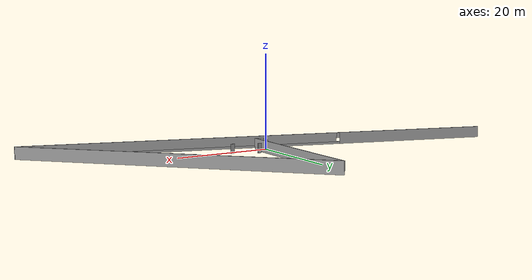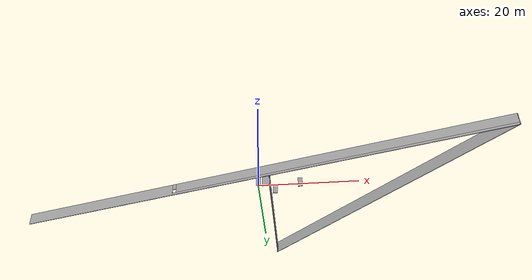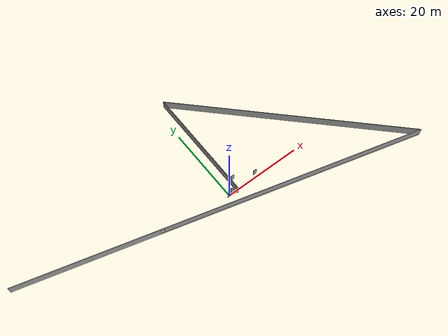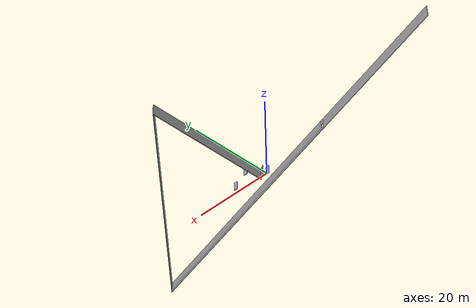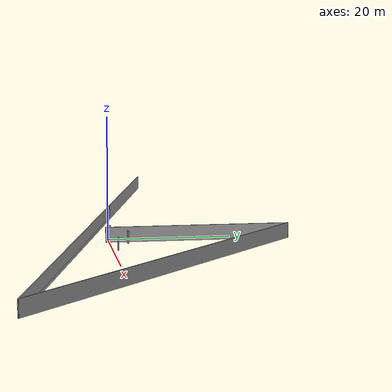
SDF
<?xml version='1.0'?>
<sdf version='1.6'>
  <model name='Untitled'>
    <pose frame=''>-2.40375 6.9482 0 0 -0 0</pose>
    <link name='Door_0'>
      <collision name='Door_0_Collision'>
        <geometry>
          <box>
            <size>0.9 0.17 2</size>
          </box>
        </geometry>
        <pose frame=''>0 0 1 0 -0 0</pose>
      </collision>
      <visual name='Door_0_Visual'>
        <pose frame=''>0 0 1 0 -0 0</pose>
        <geometry>
          <box>
            <size>0.9 0.17 2</size>
          </box>
        </geometry>
        <material>
          <script>
            <uri>file://media/materials/scripts/gazebo.material</uri>
            <name>Gazebo/Grey</name>
          </script>
        </material>
      </visual>
      <pose frame=''>2.37353 -7.07078 0 0 -0 0</pose>
    </link>
    <link name='Door_1'>
      <collision name='Door_1_Collision'>
        <geometry>
          <box>
            <size>0.9 0.17 2</size>
          </box>
        </geometry>
        <pose frame=''>0 0 1 0 -0 0</pose>
      </collision>
      <visual name='Door_1_Visual'>
        <pose frame=''>0 0 1 0 -0 0</pose>
        <geometry>
          <box>
            <size>0.9 0.17 2</size>
          </box>
        </geometry>
        <material>
          <script>
            <uri>file://media/materials/scripts/gazebo.material</uri>
            <name>Gazebo/Grey</name>
          </script>
        </material>
      </visual>
      <pose frame=''>5.66561 -3.99455 0 0 -0 0</pose>
    </link>
    <link name='Door_2'>
      <collision name='Door_2_Collision'>
        <geometry>
          <box>
            <size>0.9 0.17 2</size>
          </box>
        </geometry>
        <pose frame=''>0 0 1 0 -0 0</pose>
      </collision>
      <visual name='Door_2_Visual'>
        <pose frame=''>0 0 1 0 -0 0</pose>
        <geometry>
          <box>
            <size>0.9 0.17 2</size>
          </box>
        </geometry>
        <material>
          <script>
            <uri>file://media/materials/scripts/gazebo.material</uri>
            <name>Gazebo/Grey</name>
          </script>
        </material>
      </visual>
      <pose frame=''>10.7763 -6.07667 0 0 -0 0</pose>
    </link>
    <link name='Wall_289'>
      <pose frame=''>-0.007112 -9.15254 0 0 0 -0.261799</pose>
      <visual name='Wall_289_Visual_0'>
        <pose frame=''>-33.6671 0 1.25 0 -0 0</pose>
        <geometry>
          <box>
            <size>35.1657 0.15 2.5</size>
          </box>
        </geometry>
        <material>
          <script>
            <uri>file://media/materials/scripts/gazebo.material</uri>
            <name>Gazebo/Grey</name>
          </script>
          <ambient>1 1 1 1</ambient>
        </material>
        <meta>
          <layer>0</layer>
        </meta>
      </visual>
      <collision name='Wall_289_Collision_0'>
        <geometry>
          <box>
            <size>35.1657 0.15 2.5</size>
          </box>
        </geometry>
        <pose frame=''>-33.6671 0 1.25 0 -0 0</pose>
      </collision>
      <visual name='Wall_289_Visual_1'>
        <pose frame=''>17.5829 0 0.25 0 -0 0</pose>
        <geometry>
          <box>
            <size>67.3343 0.15 0.5</size>
          </box>
        </geometry>
        <material>
          <script>
            <uri>file://media/materials/scripts/gazebo.material</uri>
            <name>Gazebo/Grey</name>
          </script>
          <ambient>1 1 1 1</ambient>
        </material>
        <meta>
          <layer>0</layer>
        </meta>
      </visual>
      <collision name='Wall_289_Collision_1'>
        <geometry>
          <box>
            <size>67.3343 0.15 0.5</size>
          </box>
        </geometry>
        <pose frame=''>17.5829 0 0.25 0 -0 0</pose>
      </collision>
      <visual name='Wall_289_Visual_2'>
        <pose frame=''>17.9829 0 1.5 0 -0 0</pose>
        <geometry>
          <box>
            <size>66.5343 0.15 2</size>
          </box>
        </geometry>
        <material>
          <script>
            <uri>file://media/materials/scripts/gazebo.material</uri>
            <name>Gazebo/Grey</name>
          </script>
          <ambient>1 1 1 1</ambient>
        </material>
        <meta>
          <layer>0</layer>
        </meta>
      </visual>
      <collision name='Wall_289_Collision_2'>
        <geometry>
          <box>
            <size>66.5343 0.15 2</size>
          </box>
        </geometry>
        <pose frame=''>17.9829 0 1.5 0 -0 0</pose>
      </collision>
      <visual name='Wall_289_Visual_3'>
        <pose frame=''>-15.6843 0 1.9 0 -0 0</pose>
        <geometry>
          <box>
            <size>0.8 0.15 1.2</size>
          </box>
        </geometry>
        <material>
          <script>
            <uri>file://media/materials/scripts/gazebo.material</uri>
            <name>Gazebo/Grey</name>
          </script>
          <ambient>1 1 1 1</ambient>
        </material>
        <meta>
          <layer>0</layer>
        </meta>
      </visual>
      <collision name='Wall_289_Collision_3'>
        <geometry>
          <box>
            <size>0.8 0.15 1.2</size>
          </box>
        </geometry>
        <pose frame=''>-15.6843 0 1.9 0 -0 0</pose>
      </collision>
    </link>
    <link name='Wall_290'>
      <collision name='Wall_290_Collision'>
        <geometry>
          <box>
            <size>63.5 0.15 2.5</size>
          </box>
        </geometry>
        <pose frame=''>0 0 1.25 0 -0 0</pose>
      </collision>
      <visual name='Wall_290_Visual'>
        <pose frame=''>0 0 1.25 0 -0 0</pose>
        <geometry>
          <box>
            <size>63.5 0.15 2.5</size>
          </box>
        </geometry>
        <material>
          <script>
            <uri>file://media/materials/scripts/gazebo.material</uri>
            <name>Gazebo/Grey</name>
          </script>
          <ambient>1 1 1 1</ambient>
        </material>
        <meta>
          <layer>0</layer>
        </meta>
      </visual>
      <pose frame=''>27.0265 0 0 0 -0 2.35619</pose>
    </link>
    <link name='Wall_291'>
      <collision name='Wall_291_Collision'>
        <geometry>
          <box>
            <size>30 0.15 2.5</size>
          </box>
        </geometry>
        <pose frame=''>0 0 1.25 0 -0 0</pose>
      </collision>
      <visual name='Wall_291_Visual'>
        <pose frame=''>0 0 1.25 0 -0 0</pose>
        <geometry>
          <box>
            <size>30 0.15 2.5</size>
          </box>
        </geometry>
        <material>
          <script>
            <uri>file://media/materials/scripts/gazebo.material</uri>
            <name>Gazebo/Grey</name>
          </script>
          <ambient>1 1 1 1</ambient>
        </material>
        <meta>
          <layer>0</layer>
        </meta>
      </visual>
      <pose frame=''>4.62893 7.47261 0 0 0 -1.5708</pose>
    </link>
    <link name='Wall_292'>
      <collision name='Wall_292_Collision'>
        <geometry>
          <box>
            <size>1.75 0.15 2.5</size>
          </box>
        </geometry>
        <pose frame=''>0 0 1.25 0 -0 0</pose>
      </collision>
      <visual name='Wall_292_Visual'>
        <pose frame=''>0 0 1.25 0 -0 0</pose>
        <geometry>
          <box>
            <size>1.75 0.15 2.5</size>
          </box>
        </geometry>
        <material>
          <script>
            <uri>file://media/materials/scripts/gazebo.material</uri>
            <name>Gazebo/Grey</name>
          </script>
          <ambient>1 1 1 1</ambient>
        </material>
        <meta>
          <layer>0</layer>
        </meta>
      </visual>
      <pose frame=''>3.93611 -7.05239 0 0 -0 2.61799</pose>
    </link>
    <static>1</static>
  </model>
</sdf>
